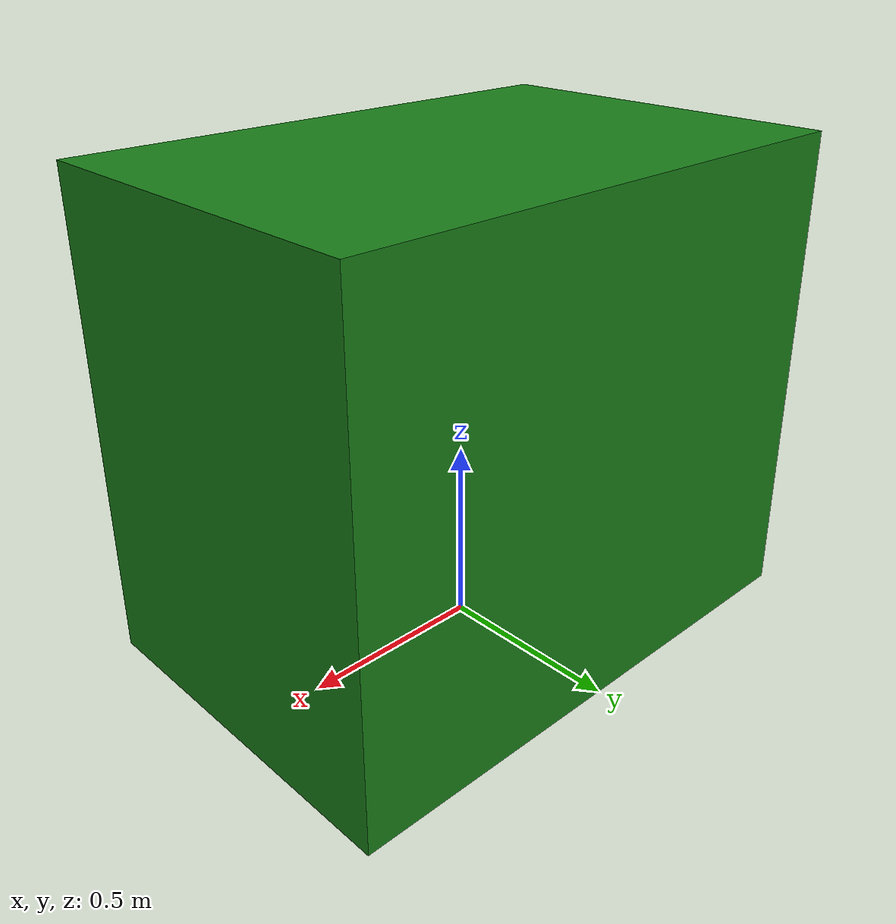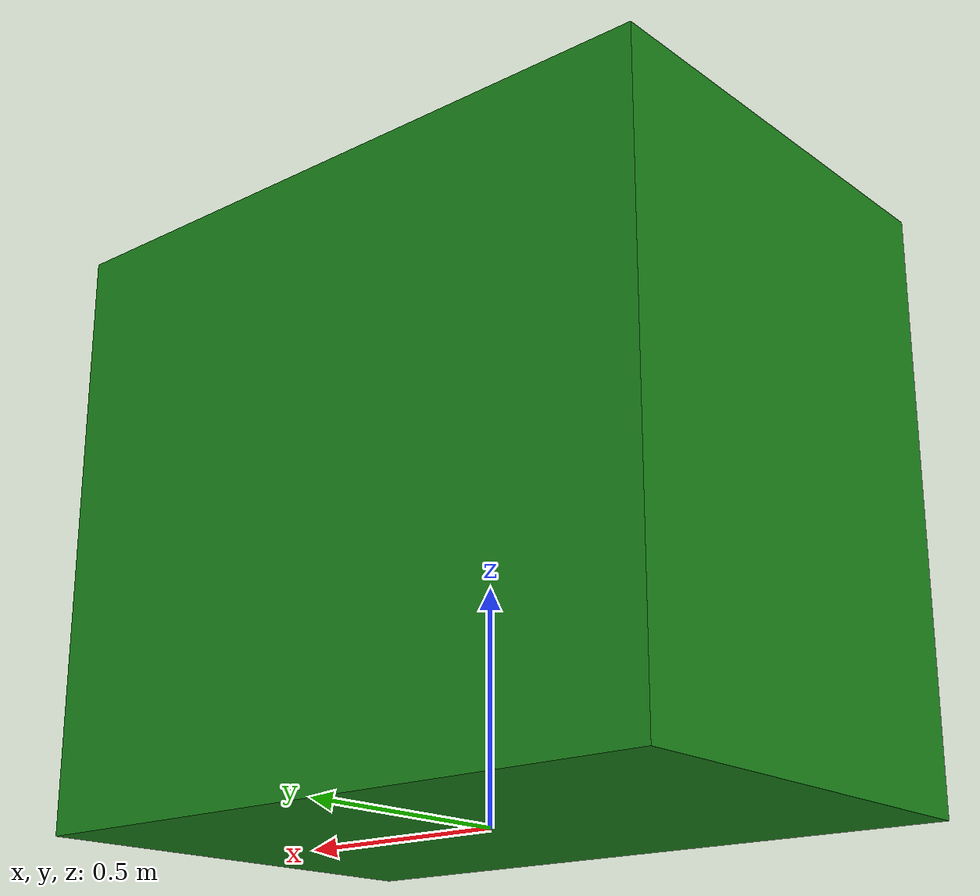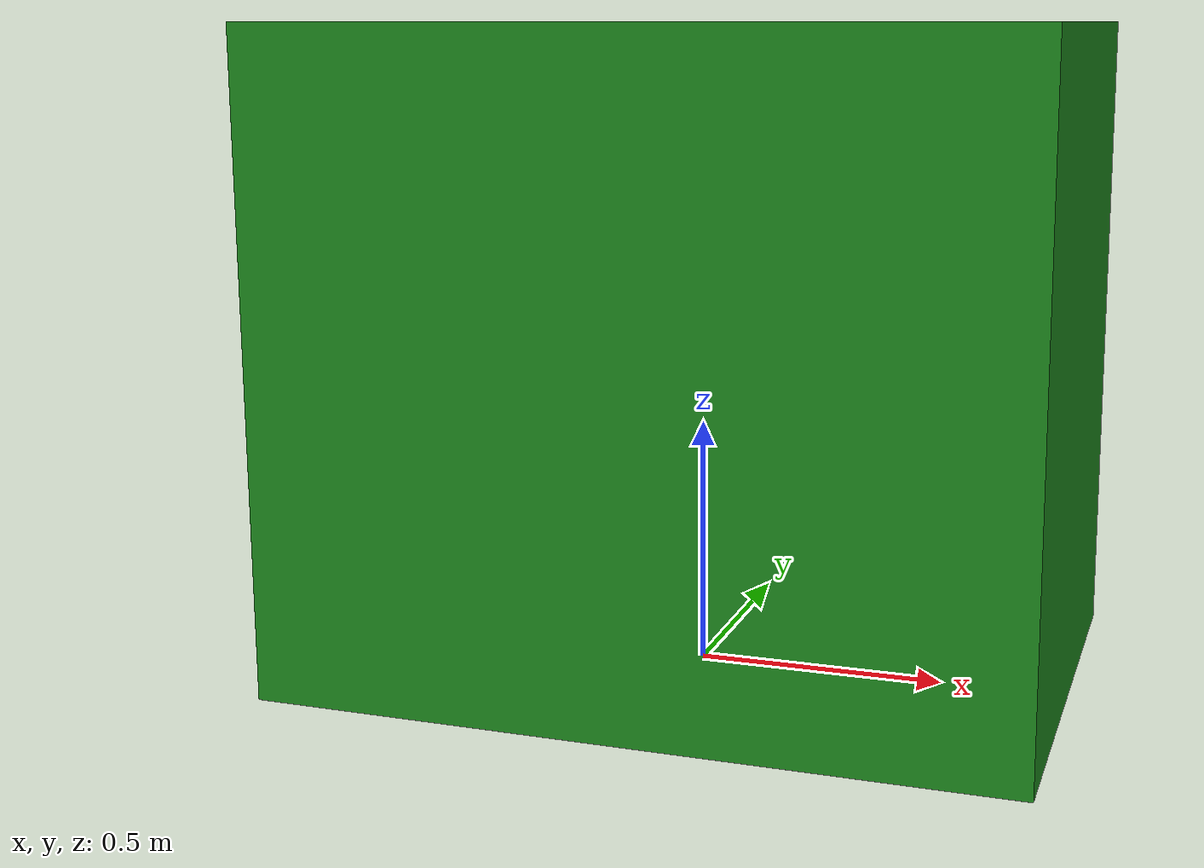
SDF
<?xml version="1.0"?>
<sdf version="1.10">
  <model name="dumpster">
    <static>true</static>
    <link name="body">
      <pose>0 0 0.65 0 0 0</pose>
      <collision name="collision">
        <geometry>
          <box>
            <size>1.5 1.0 1.3</size>
          </box>
        </geometry>
      </collision>
      <visual name="visual">
        <geometry>
          <box>
            <size>1.5 1.0 1.3</size>
          </box>
        </geometry>
        <material>
          <ambient>0.1 0.4 0.1 1</ambient>
          <diffuse>0.1 0.5 0.1 1</diffuse>
          <specular>0.05 0.2 0.05 1</specular>
        </material>
      </visual>
      <inertial>
        <mass>60.0</mass>
        <inertia>
          <ixx>1.0</ixx>
          <iyy>1.0</iyy>
          <izz>1.0</izz>
          <ixy>0</ixy>
          <ixz>0</ixz>
          <iyz>0</iyz>
        </inertia>
      </inertial>
    </link>
  </model>
</sdf>
